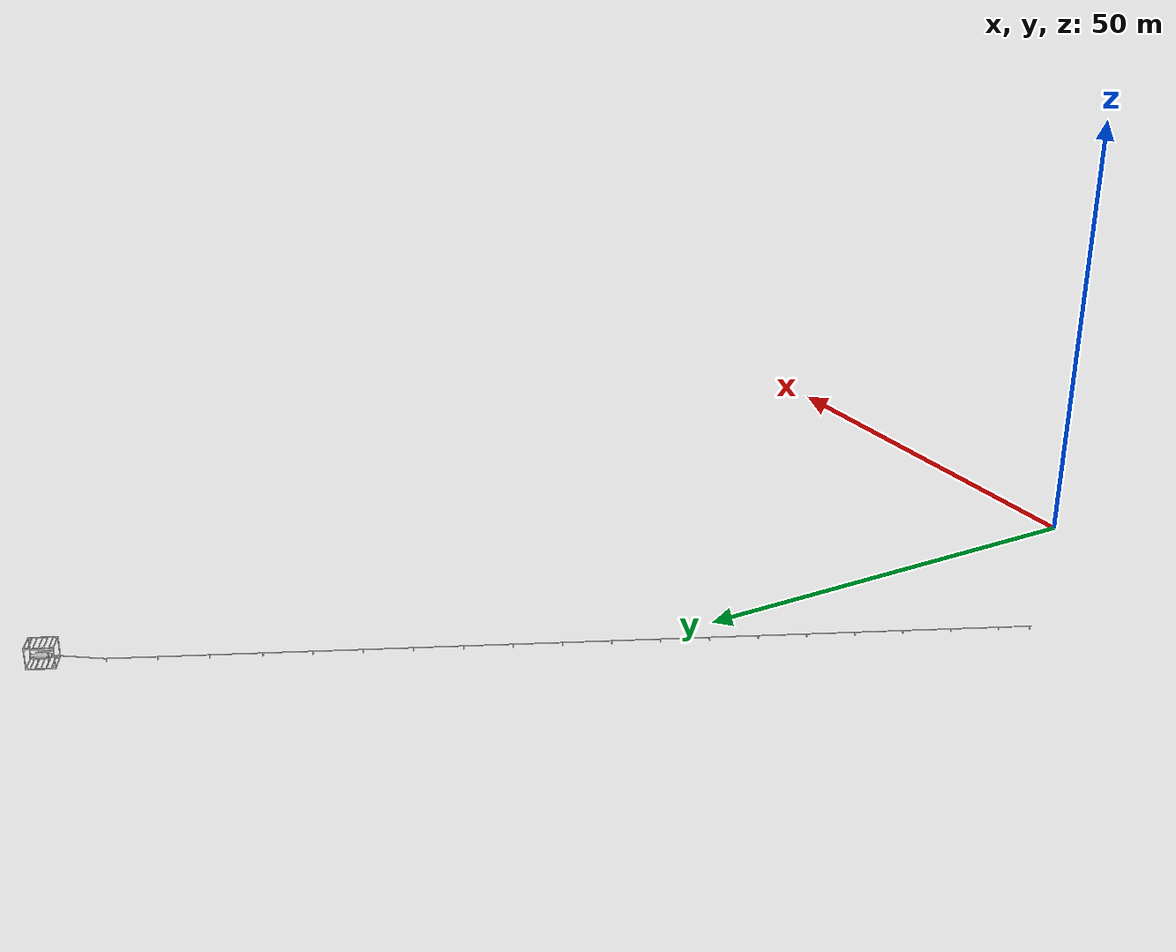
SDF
<?xml version="1.0" ?>
<sdf version="1.6">
    <world name="ssiv_bahia">
        <include>
            <uri>model://ssiv_mockup_bahia</uri>
            <pose>47.36 113.10 -12.3 0 0 4.29</pose>
        </include>

</world>
</sdf>

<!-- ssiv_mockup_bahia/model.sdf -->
<sdf version="1.4">
    <model name="ssiv_mockup_bahia">
        <pose>0 0 0 0 0 0</pose>
        <static>true</static>
        <link name="ssiv_mockup_bahia_body">
            <visual name="visual">
                <geometry>
                    <mesh>
                        <uri>model://ssiv_mockup_bahia/visual.osgb</uri>
                    </mesh>
                </geometry>
            </visual>
            <collision name="collision">
                <geometry>
                    <mesh>
                        <uri>model://ssiv_mockup_bahia/collision.stl</uri>
                    </mesh>
                </geometry>
            </collision>
            <inertial>
                <pose>0 0 -1 0 0 0</pose>
                <inertia>
                    <ixx>0.0</ixx>
                    <ixy>0</ixy>
                    <ixz>0.0</ixz>
                    <iyy>0.0</iyy>
                    <iyz>0</iyz>
                    <izz>0.0</izz>
                </inertia>
                <mass>1.0</mass>
            </inertial>
        </link>
    </model>
</sdf>
